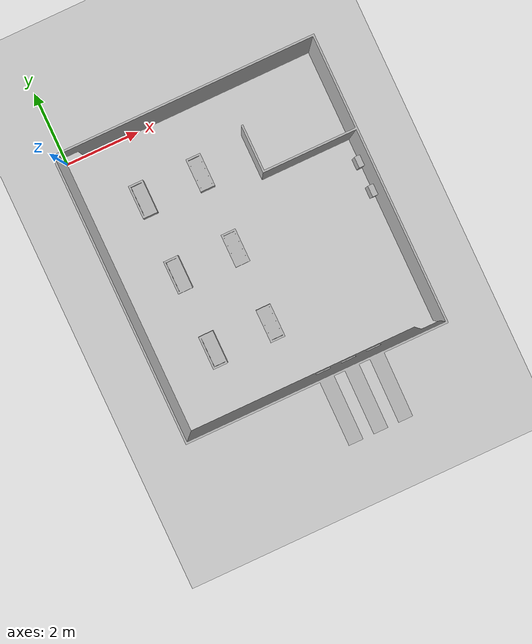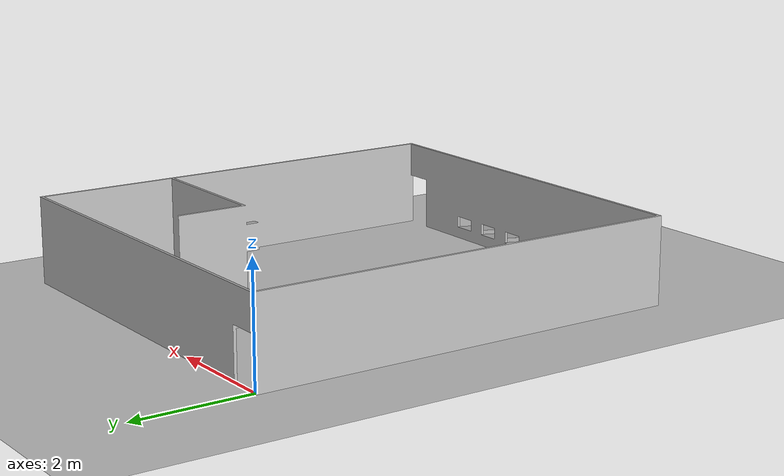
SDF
<?xml version="1.0"?>
<sdf version="1.6">
  <world name="default">
    <include>
      <uri>model://ground_plane</uri>
    </include>
    <include>
      <uri>model://sun</uri>
    </include>
    <scene>
      <shadows>false</shadows>
    </scene>
    <gui fullscreen='0'>
      <camera name='user_camera'>
        <pose frame=''>0.319654 -0.235002 9.29441 0 1.5138 0.009599</pose>
        <view_controller>orbit</view_controller>
        <projection_type>perspective</projection_type>
      </camera>
    </gui>
    <physics type="ode">
      <real_time_update_rate>1000.0</real_time_update_rate>
      <max_step_size>0.001</max_step_size>
      <real_time_factor>1</real_time_factor>
      <ode>
        <solver>
          <type>quick</type>
          <iters>150</iters>
          <precon_iters>0</precon_iters>
          <sor>1.400000</sor>
          <use_dynamic_moi_rescaling>1</use_dynamic_moi_rescaling>
        </solver>
        <constraints>
          <cfm>0.00001</cfm>
          <erp>0.2</erp>
          <contact_max_correcting_vel>2000.000000</contact_max_correcting_vel>
          <contact_surface_layer>0.01000</contact_surface_layer>
        </constraints>
      </ode>
    </physics>
    <!-- :white_check_mark: 여기에 내가 만든 모델 추가 -->
    <include>
      <uri>model://model_test_2</uri>
      <pose>0 0 0 0 0 0</pose> <!-- 필요시 위치 조정 -->
    </include>
  </world>
</sdf>

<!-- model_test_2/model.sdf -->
<sdf version="1.7">
  <model name="model_test_2">
    <static>true</static>
    <link name="full_mesh">
    <pose>0 0 0 1.5708 0 0</pose>
      <visual name="visual">
        <geometry>
          <mesh>
            <uri>model://model_test_2/meshes/model_test_2.stl</uri>
            <scale>0.01 0.01 0.01</scale>
          </mesh>
        </geometry>
      </visual>
      <collision name="collision">
        <geometry>
          <mesh>
            <uri>model://model_test_2/meshes/model_test_2.stl</uri>
            <scale>0.01 0.01 0.01</scale>
          </mesh>
        </geometry>
      </collision>
    </link>
  </model>
</sdf>
